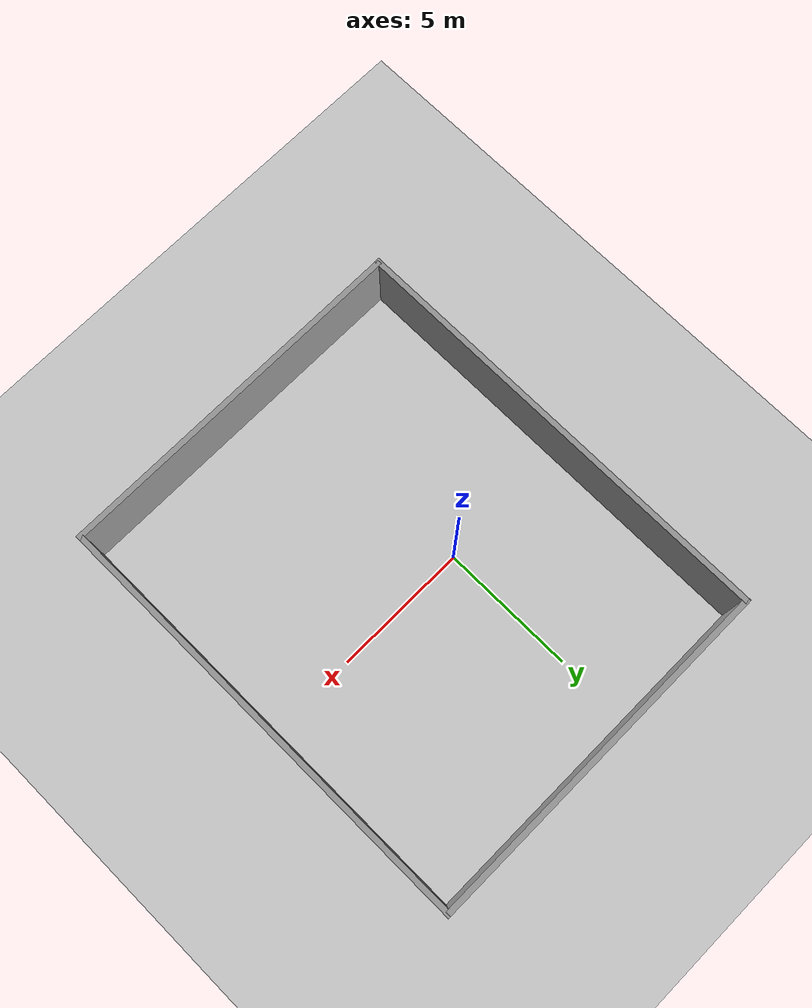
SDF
<sdf version="1.4">
 <world name="Robot Field">
  <light name="sun" type="directional">
   <pose>0 0 10 0 -0 0</pose>
   <diffuse>0.8 0.8 0.8 1</diffuse>
   <specular>0.2 0.2 0.2 1</specular>
   <attenuation>
    <range>1000</range>
    <constant>0.9</constant>
    <linear>0.01</linear>
    <quadratic>0.001</quadratic>
   </attenuation>
   <direction>-0.2 0.2 -0.8</direction>
  </light>
  <light name="light_1" type="point">
   <pose>0.8 -0.7 4 0 -0 0</pose>
   <diffuse>0.8 0.8 0.8 1</diffuse>
   <specular>0.2 0.2 0.2 1</specular>
   <attenuation>
    <range>1000</range>
    <constant>0.9</constant>
    <linear>0.01</linear>
    <quadratic>0.001</quadratic>
   </attenuation>
   <direction>-0.5 0.1 -0.9</direction>
  </light>
  <model name="ground_plane">
   <static>1</static>
   <link name="link">
    <collision name="collision">
     <geometry><plane><normal>0 0 1</normal><size>100 100</size></plane></geometry>
     <surface><friction><ode><mu>100</mu><mu2>50</mu2></ode></friction></surface>
    </collision>
    <visual name="visual">
     <cast_shadows>0</cast_shadows>
     <geometry><plane><normal>0 0 1</normal><size>100 100</size></plane></geometry>
     <material>
      <script><uri>file://media/materials/scripts/gazebo.material</uri><name>Gazebo/Grey</name></script>
     </material>
    </visual>
    <velocity_decay><linear>0</linear><angular>0</angular></velocity_decay>
   </link>
  </model>
  <physics type="ode">
   <max_step_size>0.001</max_step_size>
   <real_time_factor>1</real_time_factor>
   <real_time_update_rate>1000</real_time_update_rate>
   <gravity>0 0 -9.8</gravity>
  </physics>
  <scene><ambient>0.8 0.8 0.8 1</ambient><background>0.7 0.7 0.7 1</background><shadows>1</shadows></scene>
  <spherical_coordinates>
   <surface_model>EARTH_WGS84</surface_model>
   <latitude_deg>0</latitude_deg>
   <longitude_deg>0</longitude_deg>
   <elevation>0</elevation>
   <heading_deg>0</heading_deg>
  </spherical_coordinates>
  <model name="walls">
   <link name="Wall_0">
    <collision name="Wall_0_Collision">
     <geometry><box><size>16.4228 0.2 2.5</size></box></geometry>
     <pose>0 0 1.25 0 -0 0</pose>
    </collision>
    <visual name="Wall_0_Visual">
     <pose>0 0 1.25 0 -0 0</pose>
     <geometry><box><size>16.4228 0.2 2.5</size></box></geometry>
     <material>
      <script><uri>file://media/materials/scripts/gazebo.material</uri><name>Gazebo/Grey</name></script>
     </material>
    </visual>
    <velocity_decay><linear>0</linear><angular>0</angular></velocity_decay>
    <pose>-4.95 -0.336752 0 0 0 -1.5708</pose>
   </link>
   <link name="Wall_2">
    <collision name="Wall_2_Collision">
     <geometry><box><size>13.3538 0.2 2.5</size></box></geometry>
     <pose>0 0 1.25 0 -0 0</pose>
    </collision>
    <visual name="Wall_2_Visual">
     <pose>0 0 1.25 0 -0 0</pose>
     <geometry><box><size>13.3538 0.2 2.5</size></box></geometry>
     <material>
      <script><uri>file://media/materials/scripts/gazebo.material</uri><name>Gazebo/Grey</name></script>
     </material>
    </visual>
    <velocity_decay><linear>0</linear><angular>0</angular></velocity_decay>
    <pose>1.70355 -8.43827 0 0 -0 0</pose>
   </link>
   <link name="Wall_3">
    <collision name="Wall_3_Collision">
     <geometry><box><size>16.4128 0.2 2.5</size></box></geometry>
     <pose>0 0 1.25 0 -0 0</pose>
    </collision>
    <visual name="Wall_3_Visual">
     <pose>0 0 1.25 0 -0 0</pose>
     <geometry><box><size>16.4128 0.2 2.5</size></box></geometry>
     <material>
      <script><uri>file://media/materials/scripts/gazebo.material</uri><name>Gazebo/Grey</name></script>
     </material>
    </visual>
    <velocity_decay><linear>0</linear><angular>0</angular></velocity_decay>
    <pose>8.28045 -0.331862 0 0 -0 1.5708</pose>
   </link>
   <link name="Wall_4">
    <collision name="Wall_4_Collision">
     <geometry><box><size>13.415 0.2 2.5</size></box></geometry>
     <pose>0 0 1.25 0 -0 0</pose>
    </collision>
    <visual name="Wall_4_Visual">
     <pose>0 0 1.25 0 -0 0</pose>
     <geometry><box><size>13.415 0.2 2.5</size></box></geometry>
     <material>
      <script><uri>file://media/materials/scripts/gazebo.material</uri><name>Gazebo/Grey</name></script>
     </material>
    </visual>
    <velocity_decay><linear>0</linear><angular>0</angular></velocity_decay>
    <pose>1.67296 7.77455 0 0 -0 3.14159</pose>
   </link>
   <static>1</static>
  </model>
 </world>
</sdf>
